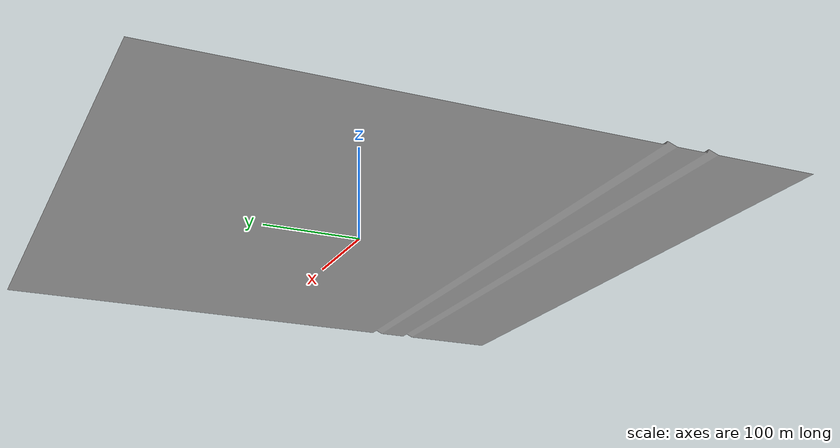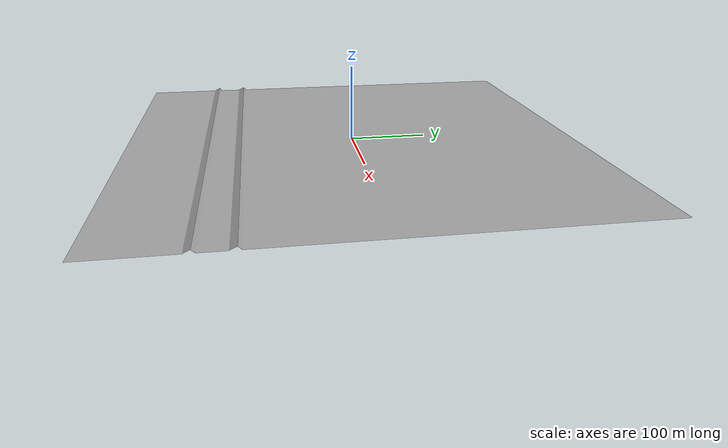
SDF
<?xml version="1.0" ?>
<sdf version='1.7'>
  <model name="feild_ground">
      <static>true</static>
        <link name='link_1'>
            <pose>0 0 0 0 0 0</pose>
            <visual name='visual'>
                <pose>0 0 0 0 0 0</pose>
                <geometry>
                    <mesh>
                        <uri>model://feild_ground/meshes/feild_ground.dae</uri>
                        <scale>1 1 1</scale>
                    </mesh>
                </geometry>
            </visual>
            <collision name='collision'>
                <pose>0 0 0 0 0 0</pose>
                <geometry>
                    <mesh>
                        <uri>model://feild_ground/meshes/feild_ground.dae</uri>
                        <scale>1 1 1</scale>
                    </mesh>
                </geometry>
            </collision>
        </link>
  </model>
</sdf>
